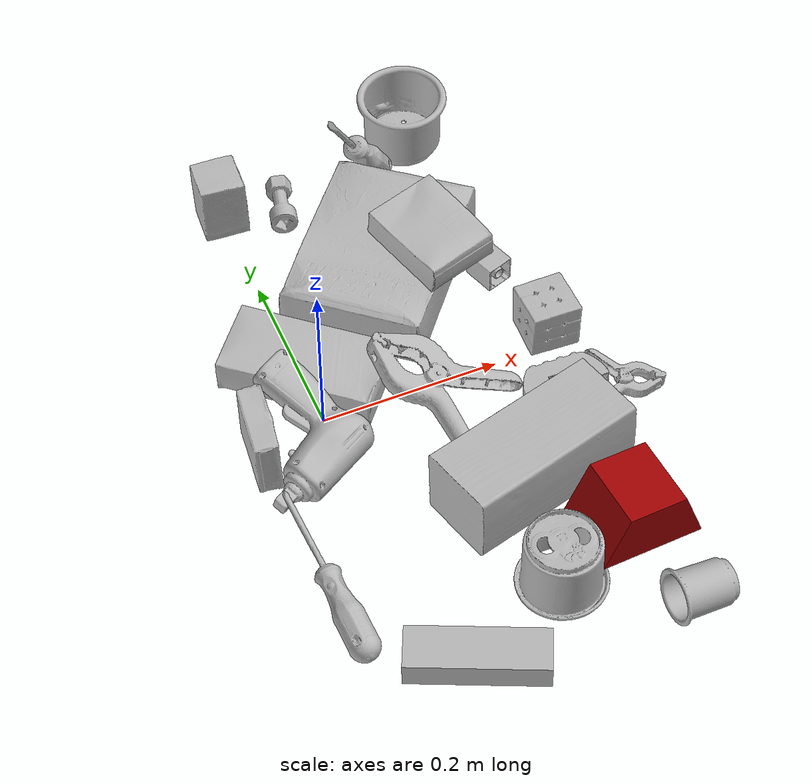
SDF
<sdf version="1.4">
  <world name="default">
    <light name="light1" type="point">
      <pose>0 0 1 0 0 0</pose>
      <diffuse>3 3 3 1</diffuse>
      <specular>3 3 3 1</specular>
    </light>
    <light name="light2" type="point">
      <pose>0 0.5 2 0 0 0</pose>
      <diffuse>1 1 1 1</diffuse>
      <specular>1 1 1 1</specular>
    </light>
    <light name="light3" type="point">
      <pose>0 0.5 2 0 0 0</pose>
      <diffuse>3 3 3 1</diffuse>
      <specular>3 3 3 1</specular>
    </light>
    <scene>
      <ambient>0.7 0.7 0.7</ambient>
    </scene>
    <model name="box21">
      <link name="link_box21">
        <collision name="default">
          <geometry>
            <mesh>
              <uri>model://cracker_box/collision_meshes/collision.obj</uri>
              <scale>1.0 1.0 1.0</scale>
            </mesh>
          </geometry>
          <surface>
            <friction>
              <ode>
                <mu>0.5</mu>
                <mu2>0.5</mu2>
              </ode>
            </friction>
          <contact>
        <ode>
            <max_vel>0</max_vel>
            <min_depth>0.0001</min_depth>
            <kp>1e8</kp>
        </ode>
    </contact></surface>
        </collision>
        <visual name="default">
          <geometry>
            <mesh>
              <uri>model://cracker_box/visual_meshes/visual.dae</uri>
              <scale>1.0 1.0 1.0</scale>
            </mesh>
          </geometry>
        </visual>
        <inertial>
          <mass>3.1344146728515625</mass>
          <pose>0.0009464123286306858 0.00025434247800149024 -0.0017029535956680775 -0.0003162077429326042 -0.011106488668875016 0.0025467950024750923</pose>
          <inertia>
            <ixx>0.0079725515</ixx>
            <iyy>0.01316425</iyy>
            <izz>0.01878659</izz>
            <ixy>0</ixy>
            <ixz>0</ixz>
            <iyz>0</iyz>
          </inertia>
        </inertial>
      </link>
      <pose>0.13029177486896515 0.16312547028064728 0.03648184612393379 -0.011789596403390407 -0.007367263060624838 0.872134818202057</pose>
    </model>
    <model name="box22">
      <link name="link_box22">
        <collision name="default">
          <geometry>
            <mesh>
              <uri>model://jenga/collision_meshes/collision.obj</uri>
              <scale>1.0 1.0 1.0</scale>
            </mesh>
          </geometry>
          <surface>
            <friction>
              <ode>
                <mu>0.5</mu>
                <mu2>0.5</mu2>
              </ode>
            </friction>
          <contact>
        <ode>
            <max_vel>0</max_vel>
            <min_depth>0.0001</min_depth>
            <kp>1e8</kp>
        </ode>
    </contact></surface>
        </collision>
        <visual name="default">
          <geometry>
            <mesh>
              <uri>model://jenga/visual_meshes/visual.dae</uri>
              <scale>1.0 1.0 1.0</scale>
            </mesh>
          </geometry>
        </visual>
        <inertial>
          <mass>0.23869852721691132</mass>
          <pose>-2.502855807051674e-07 -0.0001025000965455547 -4.092339804628864e-05 0.0 -7.34215461761844e-07 0.0</pose>
          <inertia>
            <ixx>6.605367e-05</ixx>
            <iyy>0.00044757788</iyy>
            <izz>0.00047782745</izz>
            <ixy>0</ixy>
            <ixz>0</ixz>
            <iyz>0</iyz>
          </inertia>
        </inertial>
      </link>
      <pose>0.02961566671729088 -0.34695330262184143 0.015000003390014172 3.1415926484458367 -3.41742380291766e-09 2.7186061210495422</pose>
    </model>
    <model name="box23">
      <link name="link_box23">
        <collision name="default">
          <geometry>
            <mesh>
              <uri>model://rubiks_cube/collision_meshes/collision.obj</uri>
              <scale>1.0 1.0 1.0</scale>
            </mesh>
          </geometry>
          <surface>
            <friction>
              <ode>
                <mu>0.5</mu>
                <mu2>0.5</mu2>
              </ode>
            </friction>
          <contact>
        <ode>
            <max_vel>0</max_vel>
            <min_depth>0.0001</min_depth>
            <kp>1e8</kp>
        </ode>
    </contact></surface>
        </collision>
        <visual name="default">
          <geometry>
            <mesh>
              <uri>model://rubiks_cube/visual_meshes/visual.dae</uri>
              <scale>1.0 1.0 1.0</scale>
            </mesh>
          </geometry>
        </visual>
        <inertial>
          <mass>0.26229962706565857</mass>
          <pose>2.6721041649580002e-05 5.2569666877388954e-05 -7.264316082000732e-06 -0.05467189873579491 -0.09814109048128683 -0.0344550730209751</pose>
          <inertia>
            <ixx>0.00014493814</ixx>
            <iyy>0.00014426222</iyy>
            <izz>0.00014613918</izz>
            <ixy>0</ixy>
            <ixz>0</ixz>
            <iyz>0</iyz>
          </inertia>
        </inertial>
      </link>
      <pose>0.2702341675758362 0.021315662190318108 0.02905973419547081 -3.134139501244389 0.010892271582276928 1.5443610172586197</pose>
    </model>
    <model name="cup1">
      <link name="link_cup1">
        <collision name="default">
          <geometry>
            <mesh>
              <uri>model://j_cups/collision_meshes/collision.obj</uri>
              <scale>1.0 1.0 1.0</scale>
            </mesh>
          </geometry>
          <surface>
            <friction>
              <ode>
                <mu>0.5</mu>
                <mu2>0.5</mu2>
              </ode>
            </friction>
          <contact>
        <ode>
            <max_vel>0</max_vel>
            <min_depth>0.0001</min_depth>
            <kp>1e8</kp>
        </ode>
    </contact></surface>
        </collision>
        <visual name="default">
          <geometry>
            <mesh>
              <uri>model://j_cups/visual_meshes/visual.dae</uri>
              <scale>1.0 1.0 1.0</scale>
            </mesh>
          </geometry>
        </visual>
        <inertial>
          <mass>0.10388943552970886</mass>
          <pose>0.0006164857186377048 0.0005398984649218619 -0.0013479008339345455 0.03030360356214998 0.03758024855654077 0.43868424196936845</pose>
          <inertia>
            <ixx>0.00015254253</ixx>
            <iyy>0.0001541288</iyy>
            <izz>0.00017584988</izz>
            <ixy>0</ixy>
            <ixz>0</ixz>
            <iyz>0</iyz>
          </inertia>
        </inertial>
      </link>
      <pose>0.2340279221534729 0.3487453758716583 0.03798908367753029 4.297879337591571e-06 1.201270497700161e-06 1.7390276513566465</pose>
    </model>
    <model name="cup2">
      <link name="link_cup2">
        <collision name="default">
          <geometry>
            <mesh>
              <uri>model://i_cups/collision_meshes/collision.obj</uri>
              <scale>1.0 1.0 1.0</scale>
            </mesh>
          </geometry>
          <surface>
            <friction>
              <ode>
                <mu>0.5</mu>
                <mu2>0.5</mu2>
              </ode>
            </friction>
          <contact>
        <ode>
            <max_vel>0</max_vel>
            <min_depth>0.0001</min_depth>
            <kp>1e8</kp>
        </ode>
    </contact></surface>
        </collision>
        <visual name="default">
          <geometry>
            <mesh>
              <uri>model://i_cups/visual_meshes/visual.dae</uri>
              <scale>1.0 1.0 1.0</scale>
            </mesh>
          </geometry>
        </visual>
        <inertial>
          <mass>0.057485051453113556</mass>
          <pose>0.00011239853483857587 0.00016797262651380152 -0.000857901235576719 -0.028982969026390082 -0.03987335468246028 -0.34591562504163004</pose>
          <inertia>
            <ixx>7.958892e-05</ixx>
            <iyy>8.029015e-05</iyy>
            <izz>8.8953486e-05</izz>
            <ixy>0</ixy>
            <ixz>0</ixz>
            <iyz>0</iyz>
          </inertia>
        </inertial>
      </link>
      <pose>0.14817452430725098 -0.2896437346935272 0.037983011454343796 -3.1414168452180116 -0.001047126088666309 -2.9180184835600347</pose>
    </model>
    <model name="box11">
      <link name="link_box11">
        <collision name="default">
          <geometry>
            <mesh>
              <uri>model://wood_block/collision_meshes/collision.obj</uri>
              <scale>1.0 1.0 1.0</scale>
            </mesh>
          </geometry>
          <surface>
            <friction>
              <ode>
                <mu>0.5</mu>
                <mu2>0.5</mu2>
              </ode>
            </friction>
          <contact>
        <ode>
            <max_vel>0</max_vel>
            <min_depth>0.0001</min_depth>
            <kp>1e8</kp>
        </ode>
    </contact></surface>
        </collision>
        <visual name="default">
          <geometry>
            <mesh>
              <uri>model://wood_block/visual_meshes/visual.dae</uri>
              <scale>1.0 1.0 1.0</scale>
            </mesh>
          </geometry>
        </visual>
        <inertial>
          <mass>2.2218124866485596</mass>
          <pose>-5.813315510749817e-06 -0.000570809468626976 0.0002640858292579651 -0.052211005792275555 -0.005192694700552194 -0.006861375481739596</pose>
          <inertia>
            <ixx>0.0029731211</ixx>
            <iyy>0.009392092</iyy>
            <izz>0.009356961</izz>
            <ixy>0</ixy>
            <ixz>0</ixz>
            <iyz>0</iyz>
          </inertia>
        </inertial>
      </link>
      <pose>0.17200224101543427 -0.16169562935829163 0.045700665563344955 1.5681302107160624 -0.00693903967898543 0.27616108655813415</pose>
    </model>
    <model name="box12">
      <link name="link_box12">
        <collision name="default">
          <geometry>
            <mesh>
              <uri>model://sugar_box/collision_meshes/collision.obj</uri>
              <scale>1.0 1.0 1.0</scale>
            </mesh>
          </geometry>
          <surface>
            <friction>
              <ode>
                <mu>0.5</mu>
                <mu2>0.5</mu2>
              </ode>
            </friction>
          <contact>
        <ode>
            <max_vel>0</max_vel>
            <min_depth>0.0001</min_depth>
            <kp>1e8</kp>
        </ode>
    </contact></surface>
        </collision>
        <visual name="default">
          <geometry>
            <mesh>
              <uri>model://sugar_box/visual_meshes/visual.dae</uri>
              <scale>1.0 1.0 1.0</scale>
            </mesh>
          </geometry>
        </visual>
        <inertial>
          <mass>1.0162616968154907</mass>
          <pose>0.0010343727190047503 3.849109634757042e-05 -0.00036364805418998003 -0.0004046261550277283 0.0010506634055573133 0.0026153787890220875</pose>
          <inertia>
            <ixx>0.00084674655</ixx>
            <iyy>0.002736858</iyy>
            <izz>0.0032763465</izz>
            <ixy>0</ixy>
            <ixz>0</ixz>
            <iyz>0</iyz>
          </inertia>
        </inertial>
      </link>
      <pose>0.0041242316365242004 0.06278491020202637 0.022798608988523483 0.0007760924526328232 -0.023432507699559613 2.449218403004896</pose>
    </model>
    <model name="box13">
      <link name="link_box13">
        <collision name="default">
          <geometry>
            <mesh>
              <uri>model://pudding_box/collision_meshes/collision.obj</uri>
              <scale>1.0 1.0 1.0</scale>
            </mesh>
          </geometry>
          <surface>
            <friction>
              <ode>
                <mu>0.5</mu>
                <mu2>0.5</mu2>
              </ode>
            </friction>
          <contact>
        <ode>
            <max_vel>0</max_vel>
            <min_depth>0.0001</min_depth>
            <kp>1e8</kp>
        </ode>
    </contact></surface>
        </collision>
        <visual name="default">
          <geometry>
            <mesh>
              <uri>model://pudding_box/visual_meshes/visual.dae</uri>
              <scale>1.0 1.0 1.0</scale>
            </mesh>
          </geometry>
        </visual>
        <inertial>
          <mass>0.24922829866409302</mass>
          <pose>0.0004894822486676276 0.0008067885646596551 -0.0005188828217796981 0.005213100397381839 -0.006603797317439846 0.02007982889363753</pose>
          <inertia>
            <ixx>0.00028173975</ixx>
            <iyy>0.00018955652</iyy>
            <izz>0.0004160624</izz>
            <ixy>0</ixy>
            <ixz>0</ixz>
            <iyz>0</iyz>
          </inertia>
        </inertial>
      </link>
      <pose>0.17983828485012054 0.13335511088371277 0.08681464940309525 -3.0854509440281825 -0.022813585544755578 0.31197481583176007</pose>
    </model>
    <model name="box14">
      <link name="link_box14">
        <collision name="default">
          <geometry>
            <mesh>
              <uri>model://gelatin_box/collision_meshes/collision.obj</uri>
              <scale>1.0 1.0 1.0</scale>
            </mesh>
          </geometry>
          <surface>
            <friction>
              <ode>
                <mu>0.5</mu>
                <mu2>0.5</mu2>
              </ode>
            </friction>
          <contact>
        <ode>
            <max_vel>0</max_vel>
            <min_depth>0.0001</min_depth>
            <kp>1e8</kp>
        </ode>
    </contact></surface>
        </collision>
        <visual name="default">
          <geometry>
            <mesh>
              <uri>model://gelatin_box/visual_meshes/visual.dae</uri>
              <scale>1.0 1.0 1.0</scale>
            </mesh>
          </geometry>
        </visual>
        <inertial>
          <mass>0.21856601536273956</mass>
          <pose>0.0004319618456065655 0.00011156871914863586 -0.00036403213744051754 -0.001050372093012012 -0.00475581868936722 0.016440559471878533</pose>
          <inertia>
            <ixx>0.00015428978</ixx>
            <iyy>0.000110208384</iyy>
            <izz>0.00023486343</izz>
            <ixy>0</ixy>
            <ixz>0</ixz>
            <iyz>0</iyz>
          </inertia>
        </inertial>
      </link>
      <pose>-0.07890418916940689 -0.022463830187916756 0.03643915057182312 0.21417340682119904 -1.541447248545005 2.805884995355844</pose>
    </model>
    <model name="cup15">
      <link name="link_cup15">
        <collision name="default">
          <geometry>
            <mesh>
              <uri>model://b_cups/collision_meshes/collision.obj</uri>
              <scale>1.0 1.0 1.0</scale>
            </mesh>
          </geometry>
          <surface>
            <friction>
              <ode>
                <mu>0.5</mu>
                <mu2>0.5</mu2>
              </ode>
            </friction>
          <contact>
        <ode>
            <max_vel>0</max_vel>
            <min_depth>0.0001</min_depth>
            <kp>1e8</kp>
        </ode>
    </contact></surface>
        </collision>
        <visual name="default">
          <geometry>
            <mesh>
              <uri>model://b_cups/visual_meshes/visual.dae</uri>
              <scale>1.0 1.0 1.0</scale>
            </mesh>
          </geometry>
        </visual>
        <inertial>
          <mass>0.04691024869680405</mass>
          <pose>0.0005182002787478268 0.0018058588029816747 -0.0013381802709773183 0.1135631498080702 0.03872518969029637 -0.3456955043116969</pose>
          <inertia>
            <ixx>3.0706047e-05</ixx>
            <iyy>3.012308e-05</iyy>
            <izz>2.5838557e-05</izz>
            <ixy>0</ixy>
            <ixz>0</ixz>
            <iyz>0</iyz>
          </inertia>
        </inertial>
      </link>
      <pose>0.2663743793964386 -0.3686850965023041 0.027810320258140564 -1.470262659313961 0.42954266609442115 1.6596597334442216</pose>
    </model>
    <model name="toy1">
      <link name="link_toy1">
        <collision name="default">
          <geometry>
            <mesh>
              <uri>model://e_lego_duplo/collision_meshes/collision.obj</uri>
              <scale>1.0 1.0 1.0</scale>
            </mesh>
          </geometry>
          <surface>
            <friction>
              <ode>
                <mu>0.5</mu>
                <mu2>0.5</mu2>
              </ode>
            </friction>
          <contact>
        <ode>
            <max_vel>0</max_vel>
            <min_depth>0.0001</min_depth>
            <kp>1e8</kp>
        </ode>
    </contact></surface>
        </collision>
        <visual name="default">
          <geometry>
            <mesh>
              <uri>model://e_lego_duplo/visual_meshes/visual.dae</uri>
              <scale>1.0 1.0 1.0</scale>
            </mesh>
          </geometry>
        </visual>
        <inertial>
          <mass>0.06732096523046494</mass>
          <pose>0.000325604691170156 0.00023485434940084815 0.001952146296389401 -0.02256754688519212 -6.825533823954374e-05 -0.007625149208872714</pose>
          <inertia>
            <ixx>1.40386455e-05</ixx>
            <iyy>5.761822e-05</iyy>
            <izz>5.6108554e-05</izz>
            <ixy>0</ixy>
            <ixz>0</ixz>
            <iyz>0</iyz>
          </inertia>
        </inertial>
      </link>
      <pose>0.2499047815799713 -0.060165874660015106 0.016279419884085655 1.578638792860375 -0.004768845026926623 3.1373551506281507</pose>
    </model>
    <model name="toy2">
      <link name="link_toy2">
        <collision name="default">
          <geometry>
            <mesh>
              <uri>model://c_toy_airplane/collision_meshes/collision.obj</uri>
              <scale>1.0 1.0 1.0</scale>
            </mesh>
          </geometry>
          <surface>
            <friction>
              <ode>
                <mu>0.5</mu>
                <mu2>0.5</mu2>
              </ode>
            </friction>
          <contact>
        <ode>
            <max_vel>0</max_vel>
            <min_depth>0.0001</min_depth>
            <kp>1e8</kp>
        </ode>
    </contact></surface>
        </collision>
        <visual name="default">
          <geometry>
            <mesh>
              <uri>model://c_toy_airplane/visual_meshes/visual.dae</uri>
              <scale>1.0 1.0 1.0</scale>
            </mesh>
          </geometry>
        </visual>
        <inertial>
          <mass>0.036399733275175095</mass>
          <pose>-0.00023024277470540255 -4.4302899482318026e-07 -0.0060805329121649265 -0.006192184726307751 -0.016797944030005924 0.7654593329003626</pose>
          <inertia>
            <ixx>1.6714015e-05</ixx>
            <iyy>1.6666843e-05</iyy>
            <izz>3.9241195e-06</izz>
            <ixy>0</ixy>
            <ixz>0</ixz>
            <iyz>0</iyz>
          </inertia>
        </inertial>
      </link>
      <pose>0.0651998370885849 0.3003343343734741 0.01421594712883234 -1.7881740644521897 1.3248811085825125 -0.45007597153902185</pose>
    </model>
    <model name="toy3">
      <link name="link_toy3">
        <collision name="default">
          <geometry>
            <mesh>
              <uri>model://foam_brick/collision_meshes/collision.obj</uri>
              <scale>1.0 1.0 1.0</scale>
            </mesh>
          </geometry>
          <surface>
            <friction>
              <ode>
                <mu>0.5</mu>
                <mu2>0.5</mu2>
              </ode>
            </friction>
          <contact>
        <ode>
            <max_vel>0</max_vel>
            <min_depth>0.0001</min_depth>
            <kp>1e8</kp>
        </ode>
    </contact></surface>
        </collision>
        <visual name="default">
          <geometry>
            <mesh>
              <uri>model://foam_brick/visual_meshes/visual.dae</uri>
              <scale>1.0 1.0 1.0</scale>
            </mesh>
          </geometry>
        </visual>
        <inertial>
          <mass>0.28719362616539</mass>
          <pose>-0.0002522472059354186 0.00034584346576593816 -0.0002532101352699101 -0.2940183114741006 0.017274439707053432 -0.0007449906726392561</pose>
          <inertia>
            <ixx>0.00012545152</ixx>
            <iyy>0.00020028985</iyy>
            <izz>0.00020283528</izz>
            <ixy>0</ixy>
            <ixz>0</ixz>
            <iyz>0</iyz>
          </inertia>
        </inertial>
      </link>
      <pose>-0.002290298230946064 0.314072847366333 0.03871982917189598 0.5931388287606238 -1.5392406011409878 2.480522022191174</pose>
    </model>
    <model name="toy4">
      <link name="link_toy4">
        <collision name="default">
          <geometry>
            <mesh>
              <uri>model://prism/collision_meshes/collision.obj</uri>
              <scale>1.0 1.0 1.0</scale>
            </mesh>
          </geometry>
          <surface>
            <friction>
              <ode>
                <mu>0.5</mu>
                <mu2>0.5</mu2>
              </ode>
            </friction>
          <contact>
        <ode>
            <max_vel>0</max_vel>
            <min_depth>0.0001</min_depth>
            <kp>1e8</kp>
        </ode>
    </contact></surface>
        </collision>
        <visual name="default">
          <geometry>
            <mesh>
              <uri>model://prism/visual_meshes/visual.dae</uri>
              <scale>1.0 1.0 1.0</scale>
            </mesh>
          </geometry>
        </visual>
        <inertial>
          <mass>0.7170383930206299</mass>
          <pose>-9.85359656624496e-05 -4.96157269935793e-07 -0.0033869098406285048 0.0 0.006559181231804993 0.0</pose>
          <inertia>
            <ixx>0.0006471183</ixx>
            <iyy>0.0007820508</iyy>
            <izz>0.0009579188</izz>
            <ixy>0</ixy>
            <ixz>0</ixz>
            <iyz>0</iyz>
          </inertia>
        </inertial>
      </link>
      <pose>0.24862051010131836 -0.2490420639514923 0.035479359328746796 -4.1319125860712655e-05 0.057330790675374346 0.09557155402662557</pose>
    </model>
    <model name="toy5">
      <link name="link_toy5">
        <collision name="default">
          <geometry>
            <mesh>
              <uri>model://b_toy_airplane/collision_meshes/collision.obj</uri>
              <scale>1.0 1.0 1.0</scale>
            </mesh>
          </geometry>
          <surface>
            <friction>
              <ode>
                <mu>0.5</mu>
                <mu2>0.5</mu2>
              </ode>
            </friction>
          <contact>
        <ode>
            <max_vel>0</max_vel>
            <min_depth>0.0001</min_depth>
            <kp>1e8</kp>
        </ode>
    </contact></surface>
        </collision>
        <visual name="default">
          <geometry>
            <mesh>
              <uri>model://b_toy_airplane/visual_meshes/visual.dae</uri>
              <scale>1.0 1.0 1.0</scale>
            </mesh>
          </geometry>
        </visual>
        <inertial>
          <mass>0.399619996547699</mass>
          <pose>0.005081363022327423 0.004015584941953421 0.009543066844344139 -0.04001809649421662 -0.04022184162979335 -0.5601502893443677</pose>
          <inertia>
            <ixx>0.0007419019</ixx>
            <iyy>0.00029654545</iyy>
            <izz>0.0009229998</izz>
            <ixy>0</ixy>
            <ixz>0</ixz>
            <iyz>0</iyz>
          </inertia>
        </inertial>
      </link>
      <pose>-0.021645883098244667 -0.033027663826942444 0.02913673408329487 -0.30848114644329044 0.050332188272998575 -2.6264856469382276</pose>
    </model>
    <model name="toy6">
      <link name="link_toy6">
        <collision name="default">
          <geometry>
            <mesh>
              <uri>model://f_lego_duplo/collision_meshes/collision.obj</uri>
              <scale>1.0 1.0 1.0</scale>
            </mesh>
          </geometry>
          <surface>
            <friction>
              <ode>
                <mu>0.5</mu>
                <mu2>0.5</mu2>
              </ode>
            </friction>
          <contact>
        <ode>
            <max_vel>0</max_vel>
            <min_depth>0.0001</min_depth>
            <kp>1e8</kp>
        </ode>
    </contact></surface>
        </collision>
        <visual name="default">
          <geometry>
            <mesh>
              <uri>model://f_lego_duplo/visual_meshes/visual.dae</uri>
              <scale>1.0 1.0 1.0</scale>
            </mesh>
          </geometry>
        </visual>
        <inertial>
          <mass>0.05315950885415077</mass>
          <pose>2.3694145056651905e-05 0.0001339314185315743 0.0018837872194126248 0.029838727868319145 -0.014424898970195728 -0.6756716124708322</pose>
          <inertia>
            <ixx>1.1232896e-05</ixx>
            <iyy>1.1332969e-05</iyy>
            <izz>9.750634e-06</izz>
            <ixy>0</ixy>
            <ixz>0</ixz>
            <iyz>0</iyz>
          </inertia>
        </inertial>
      </link>
      <pose>0.2441454976797104 0.12328419089317322 0.01636384427547455 0.6747561200095109 -1.5707391848829255 -1.912024493525389</pose>
    </model>
    <model name="hardware1">
      <link name="link_hardware1">
        <collision name="default">
          <geometry>
            <mesh>
              <uri>model://flat_screwdriver/collision_meshes/collision.obj</uri>
              <scale>1.0 1.0 1.0</scale>
            </mesh>
          </geometry>
          <surface>
            <friction>
              <ode>
                <mu>0.5</mu>
                <mu2>0.5</mu2>
              </ode>
            </friction>
          <contact>
        <ode>
            <max_vel>0</max_vel>
            <min_depth>0.0001</min_depth>
            <kp>1e8</kp>
        </ode>
    </contact></surface>
        </collision>
        <visual name="default">
          <geometry>
            <mesh>
              <uri>model://flat_screwdriver/visual_meshes/visual.dae</uri>
              <scale>1.0 1.0 1.0</scale>
            </mesh>
          </geometry>
        </visual>
        <inertial>
          <mass>0.12191366404294968</mass>
          <pose>-0.0489187091588974 -0.0006576801533810794 -0.0006140916957519948 -0.5614853566550635 -0.0032337267722331534 0.006982277608032515</pose>
          <inertia>
            <ixx>1.4404012e-05</ixx>
            <iyy>0.00018286215</iyy>
            <izz>0.00018277747</izz>
            <ixy>0</ixy>
            <ixz>0</ixz>
            <iyz>0</iyz>
          </inertia>
        </inertial>
      </link>
      <pose>0.15021724998950958 0.2780543863773346 0.09198600798845291 -1.3121877736544105 -1.011938595456082 -2.4421974207421036</pose>
    </model>
    <model name="hardware2">
      <link name="link_hardware2">
        <collision name="default">
          <geometry>
            <mesh>
              <uri>model://medium_clamp/collision_meshes/collision.obj</uri>
              <scale>1.0 1.0 1.0</scale>
            </mesh>
          </geometry>
          <surface>
            <friction>
              <ode>
                <mu>0.5</mu>
                <mu2>0.5</mu2>
              </ode>
            </friction>
          <contact>
        <ode>
            <max_vel>0</max_vel>
            <min_depth>0.0001</min_depth>
            <kp>1e8</kp>
        </ode>
    </contact></surface>
        </collision>
        <visual name="default">
          <geometry>
            <mesh>
              <uri>model://medium_clamp/visual_meshes/visual.dae</uri>
              <scale>1.0 1.0 1.0</scale>
            </mesh>
          </geometry>
        </visual>
        <inertial>
          <mass>0.018204163759946823</mass>
          <pose>0.005390994716435671 0.00039532413939014077 -0.0001222158025484532 -0.0012269240735234023 0.0025845026557488396 0.03820772126630794</pose>
          <inertia>
            <ixx>4.959469e-06</ixx>
            <iyy>7.217431e-06</iyy>
            <izz>1.1117007e-05</izz>
            <ixy>0</ixy>
            <ixz>0</ixz>
            <iyz>0</iyz>
          </inertia>
        </inertial>
      </link>
      <pose>0.3145104944705963 -0.08315914869308472 0.01331449393182993 -3.0198401823554897 0.07746116705256237 -0.30558540304222864</pose>
    </model>
    <model name="hardware3">
      <link name="link_hardware3">
        <collision name="default">
          <geometry>
            <mesh>
              <uri>model://large_clamp/collision_meshes/collision.obj</uri>
              <scale>1.0 1.0 1.0</scale>
            </mesh>
          </geometry>
          <surface>
            <friction>
              <ode>
                <mu>0.5</mu>
                <mu2>0.5</mu2>
              </ode>
            </friction>
          <contact>
        <ode>
            <max_vel>0</max_vel>
            <min_depth>0.0001</min_depth>
            <kp>1e8</kp>
        </ode>
    </contact></surface>
        </collision>
        <visual name="default">
          <geometry>
            <mesh>
              <uri>model://large_clamp/visual_meshes/visual.dae</uri>
              <scale>1.0 1.0 1.0</scale>
            </mesh>
          </geometry>
        </visual>
        <inertial>
          <mass>0.18972517549991608</mass>
          <pose>0.006369356997311115 0.0003585676895454526 -0.00018398048996459693 -0.002133071569430183 0.00967158655684735 0.02663316926682878</pose>
          <inertia>
            <ixx>0.0001673895</ixx>
            <iyy>0.00031788155</iyy>
            <izz>0.00045985627</izz>
            <ixy>0</ixy>
            <ixz>0</ixz>
            <iyz>0</iyz>
          </inertia>
        </inertial>
      </link>
      <pose>0.11945176869630814 -0.022676898166537285 0.03592661768198013 -3.141523592975756 -0.3193301771100585 2.305367651872235</pose>
    </model>
    <model name="hardware4">
      <link name="link_hardware4">
        <collision name="default">
          <geometry>
            <mesh>
              <uri>model://phillips_screwdriver/collision_meshes/collision.obj</uri>
              <scale>1.0 1.0 1.0</scale>
            </mesh>
          </geometry>
          <surface>
            <friction>
              <ode>
                <mu>0.5</mu>
                <mu2>0.5</mu2>
              </ode>
            </friction>
          <contact>
        <ode>
            <max_vel>0</max_vel>
            <min_depth>0.0001</min_depth>
            <kp>1e8</kp>
        </ode>
    </contact></surface>
        </collision>
        <visual name="default">
          <geometry>
            <mesh>
              <uri>model://phillips_screwdriver/visual_meshes/visual.dae</uri>
              <scale>1.0 1.0 1.0</scale>
            </mesh>
          </geometry>
        </visual>
        <inertial>
          <mass>0.10424148291349411</mass>
          <pose>-0.047771818935871124 0.0010362300090491772 -0.000455554953077808 -0.15717568897110376 0.005850990280187748 -0.0021567475529960492</pose>
          <inertia>
            <ixx>1.2247306e-05</ixx>
            <iyy>0.00015355984</iyy>
            <izz>0.00015369034</izz>
            <ixy>0</ixy>
            <ixz>0</ixz>
            <iyz>0</iyz>
          </inertia>
        </inertial>
      </link>
      <pose>-0.0759623795747757 -0.2063063383102417 0.02676796354353428 -2.1779880016903572 -0.09958212073289059 1.627018081400952</pose>
    </model>
  <physics type="ode">
      <max_contacts>50</max_contacts>
      <ode>
        <solver>
          <type>quick</type>
          <iters>75</iters>
        </solver>
        <constraints>
          <contact_max_correcting_vel>0</contact_max_correcting_vel>
          <contact_surface_layer>0</contact_surface_layer>
        </constraints>
      </ode>
    </physics></world>
</sdf>
